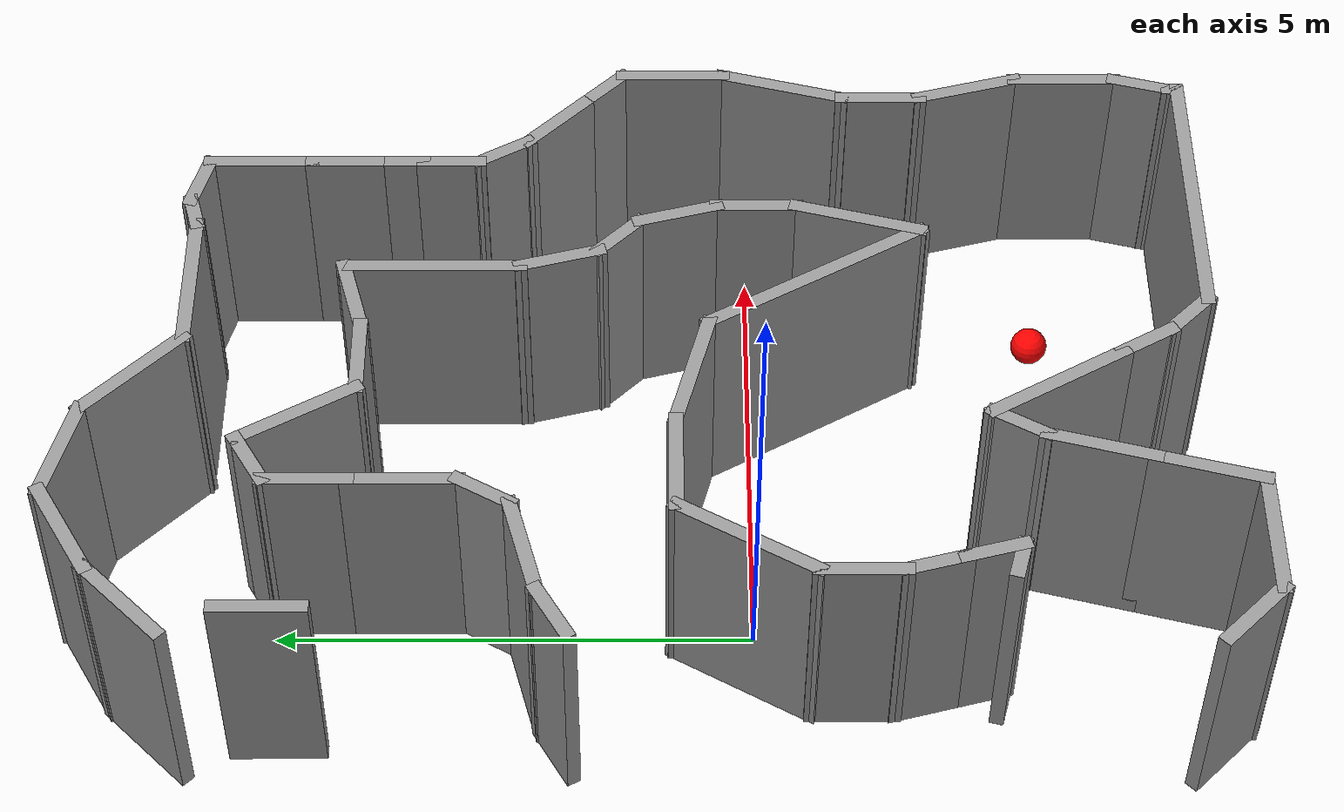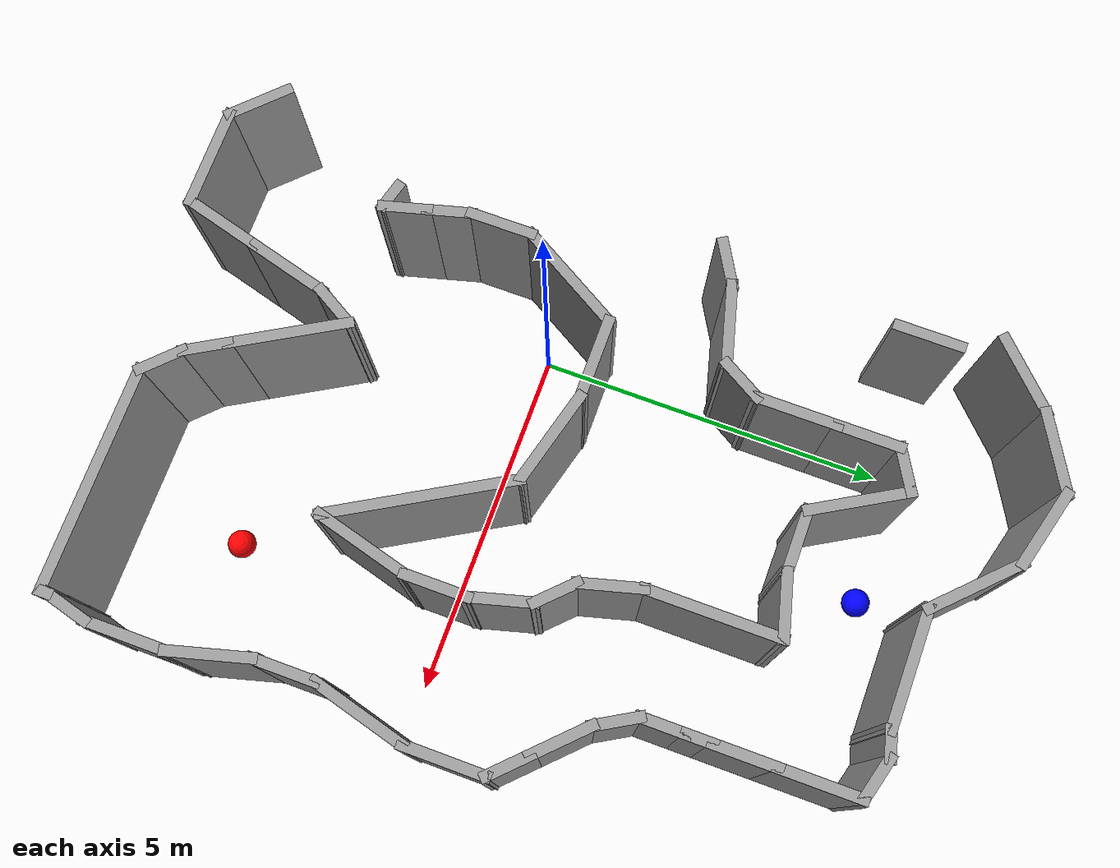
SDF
<sdf version="1.7">
 <model name="patrol_environment">
  <static>true</static>
  <pose>-2.57827 0.945924 0 0 -0 0</pose>
  <link name="Wall_100">
   <collision name="Wall_100_Collision">
    <geometry><box><size>1.25 0.15 2.5</size></box></geometry>
    <pose>0 0 1.25 0 -0 0</pose>
   </collision>
   <visual name="Wall_100_Visual">
    <pose>0 0 1.25 0 -0 0</pose>
    <geometry><box><size>1.25 0.15 2.5</size></box></geometry>
    <material>
     <script><uri>file://media/materials/scripts/gazebo.material</uri><name>Gazebo/Grey</name></script>
     <ambient>1 1 1 1</ambient>
    </material>
    <meta><layer>0</layer></meta>
   </visual>
   <pose>2.97533 -0.124161 0 0 -0 3.14159</pose>
  </link>
  <link name="Wall_101">
   <collision name="Wall_101_Collision">
    <geometry><box><size>1.75 0.15 2.5</size></box></geometry>
    <pose>0 0 1.25 0 -0 0</pose>
   </collision>
   <visual name="Wall_101_Visual">
    <pose>0 0 1.25 0 -0 0</pose>
    <geometry><box><size>1.75 0.15 2.5</size></box></geometry>
    <material>
     <script><uri>file://media/materials/scripts/gazebo.material</uri><name>Gazebo/Grey</name></script>
     <ambient>1 1 1 1</ambient>
    </material>
    <meta><layer>0</layer></meta>
   </visual>
   <pose>2.02533 -0.816981 0 0 -0 -2.0944</pose>
  </link>
  <link name="Wall_102">
   <collision name="Wall_102_Collision">
    <geometry><box><size>1 0.15 2.5</size></box></geometry>
    <pose>0 0 1.25 0 -0 0</pose>
   </collision>
   <visual name="Wall_102_Visual">
    <pose>0 0 1.25 0 -0 0</pose>
    <geometry><box><size>1 0.15 2.5</size></box></geometry>
    <material>
     <script><uri>file://media/materials/scripts/gazebo.material</uri><name>Gazebo/Grey</name></script>
     <ambient>1 1 1 1</ambient>
    </material>
    <meta><layer>0</layer></meta>
   </visual>
   <pose>1.62533 -1.9348 0 0 -0 -1.5708</pose>
  </link>
  <link name="Wall_103">
   <collision name="Wall_103_Collision">
    <geometry><box><size>0.75 0.15 2.5</size></box></geometry>
    <pose>0 0 1.25 0 -0 0</pose>
   </collision>
   <visual name="Wall_103_Visual">
    <pose>0 0 1.25 0 -0 0</pose>
    <geometry><box><size>0.75 0.15 2.5</size></box></geometry>
    <material>
     <script><uri>file://media/materials/scripts/gazebo.material</uri><name>Gazebo/Grey</name></script>
     <ambient>1 1 1 1</ambient>
    </material>
    <meta><layer>0</layer></meta>
   </visual>
   <pose>1.70298 -2.64958 0 0 -0 -1.309</pose>
  </link>
  <link name="Wall_106">
   <collision name="Wall_106_Collision">
    <geometry><box><size>0.75 0.15 2.5</size></box></geometry>
    <pose>0 0 1.25 0 -0 0</pose>
   </collision>
   <visual name="Wall_106_Visual">
    <pose>0 0 1.25 0 -0 0</pose>
    <geometry><box><size>0.75 0.15 2.5</size></box></geometry>
    <material>
     <script><uri>file://media/materials/scripts/gazebo.material</uri><name>Gazebo/Grey</name></script>
     <ambient>1 1 1 1</ambient>
    </material>
    <meta><layer>0</layer></meta>
   </visual>
   <pose>1.85827 -3.22913 0 0 -0 -1.309</pose>
  </link>
  <link name="Wall_107">
   <collision name="Wall_107_Collision">
    <geometry><box><size>0.5 0.15 2.5</size></box></geometry>
    <pose>0 0 1.25 0 -0 0</pose>
   </collision>
   <visual name="Wall_107_Visual">
    <pose>0 0 1.25 0 -0 0</pose>
    <geometry><box><size>0.5 0.15 2.5</size></box></geometry>
    <material>
     <script><uri>file://media/materials/scripts/gazebo.material</uri><name>Gazebo/Grey</name></script>
     <ambient>1 1 1 1</ambient>
    </material>
    <meta><layer>0</layer></meta>
   </visual>
   <pose>1.76688 -3.47362 0 0 -0 2.87979</pose>
  </link>
  <link name="Wall_14">
   <collision name="Wall_14_Collision">
    <geometry><box><size>1 0.15 2.5</size></box></geometry>
    <pose>0 0 1.25 0 -0 0</pose>
   </collision>
   <visual name="Wall_14_Visual">
    <pose>0 0 1.25 0 -0 0</pose>
    <geometry><box><size>1 0.15 2.5</size></box></geometry>
    <material>
     <script><uri>file://media/materials/scripts/gazebo.material</uri><name>Gazebo/Grey</name></script>
     <ambient>1 1 1 1</ambient>
    </material>
    <meta><layer>0</layer></meta>
   </visual>
   <pose>1.10289 -5.67703 0 0 -0 -0.785398</pose>
  </link>
  <link name="Wall_15">
   <collision name="Wall_15_Collision">
    <geometry><box><size>1.5 0.15 2.5</size></box></geometry>
    <pose>0 0 1.25 0 -0 0</pose>
   </collision>
   <visual name="Wall_15_Visual">
    <pose>0 0 1.25 0 -0 0</pose>
    <geometry><box><size>1.5 0.15 2.5</size></box></geometry>
    <material>
     <script><uri>file://media/materials/scripts/gazebo.material</uri><name>Gazebo/Grey</name></script>
     <ambient>1 1 1 1</ambient>
    </material>
    <meta><layer>0</layer></meta>
   </visual>
   <pose>2.07841 -5.97755 0 0 -0 0</pose>
  </link>
  <link name="Wall_16">
   <collision name="Wall_16_Collision">
    <geometry><box><size>1.25 0.15 2.5</size></box></geometry>
    <pose>0 0 1.25 0 -0 0</pose>
   </collision>
   <visual name="Wall_16_Visual">
    <pose>0 0 1.25 0 -0 0</pose>
    <geometry><box><size>1.25 0.15 2.5</size></box></geometry>
    <material>
     <script><uri>file://media/materials/scripts/gazebo.material</uri><name>Gazebo/Grey</name></script>
     <ambient>1 1 1 1</ambient>
    </material>
    <meta><layer>0</layer></meta>
   </visual>
   <pose>2.89576 -5.44629 0 0 -0 1.309</pose>
  </link>
  <link name="Wall_17">
   <collision name="Wall_17_Collision">
    <geometry><box><size>1.25 0.15 2.5</size></box></geometry>
    <pose>0 0 1.25 0 -0 0</pose>
   </collision>
   <visual name="Wall_17_Visual">
    <pose>0 0 1.25 0 -0 0</pose>
    <geometry><box><size>1.25 0.15 2.5</size></box></geometry>
    <material>
     <script><uri>file://media/materials/scripts/gazebo.material</uri><name>Gazebo/Grey</name></script>
     <ambient>1 1 1 1</ambient>
    </material>
    <meta><layer>0</layer></meta>
   </visual>
   <pose>3.18046 -4.38377 0 0 -0 1.309</pose>
  </link>
  <link name="Wall_18">
   <collision name="Wall_18_Collision">
    <geometry><box><size>0.75 0.15 2.5</size></box></geometry>
    <pose>0 0 1.25 0 -0 0</pose>
   </collision>
   <visual name="Wall_18_Visual">
    <pose>0 0 1.25 0 -0 0</pose>
    <geometry><box><size>0.75 0.15 2.5</size></box></geometry>
    <material>
     <script><uri>file://media/materials/scripts/gazebo.material</uri><name>Gazebo/Grey</name></script>
     <ambient>1 1 1 1</ambient>
    </material>
    <meta><layer>0</layer></meta>
   </visual>
   <pose>3.47281 -3.59271 0 0 -0 1.0472</pose>
  </link>
  <link name="Wall_19">
   <collision name="Wall_19_Collision">
    <geometry><box><size>1.75 0.15 2.5</size></box></geometry>
    <pose>0 0 1.25 0 -0 0</pose>
   </collision>
   <visual name="Wall_19_Visual">
    <pose>0 0 1.25 0 -0 0</pose>
    <geometry><box><size>1.75 0.15 2.5</size></box></geometry>
    <material>
     <script><uri>file://media/materials/scripts/gazebo.material</uri><name>Gazebo/Grey</name></script>
     <ambient>1 1 1 1</ambient>
    </material>
    <meta><layer>0</layer></meta>
   </visual>
   <pose>4.02281 -4.02572 0 0 -0 -1.0472</pose>
  </link>
  <link name="Wall_20">
   <collision name="Wall_20_Collision">
    <geometry><box><size>0.75 0.15 2.5</size></box></geometry>
    <pose>0 0 1.25 0 -0 0</pose>
   </collision>
   <visual name="Wall_20_Visual">
    <pose>0 0 1.25 0 -0 0</pose>
    <geometry><box><size>0.75 0.15 2.5</size></box></geometry>
    <material>
     <script><uri>file://media/materials/scripts/gazebo.material</uri><name>Gazebo/Grey</name></script>
     <ambient>1 1 1 1</ambient>
    </material>
    <meta><layer>0</layer></meta>
   </visual>
   <pose>4.57281 -4.97835 0 0 -0 -1.0472</pose>
  </link>
  <link name="Wall_21">
   <collision name="Wall_21_Collision">
    <geometry><box><size>0.75 0.15 2.5</size></box></geometry>
    <pose>0 0 1.25 0 -0 0</pose>
   </collision>
   <visual name="Wall_21_Visual">
    <pose>0 0 1.25 0 -0 0</pose>
    <geometry><box><size>0.75 0.15 2.5</size></box></geometry>
    <material>
     <script><uri>file://media/materials/scripts/gazebo.material</uri><name>Gazebo/Grey</name></script>
     <ambient>1 1 1 1</ambient>
    </material>
    <meta><layer>0</layer></meta>
   </visual>
   <pose>4.93494 -5.45029 0 0 -0 -0.785398</pose>
  </link>
  <link name="Wall_22">
   <collision name="Wall_22_Collision">
    <geometry><box><size>3.25 0.15 2.5</size></box></geometry>
    <pose>0 0 1.25 0 -0 0</pose>
   </collision>
   <visual name="Wall_22_Visual">
    <pose>0 0 1.25 0 -0 0</pose>
    <geometry><box><size>3.25 0.15 2.5</size></box></geometry>
    <material>
     <script><uri>file://media/materials/scripts/gazebo.material</uri><name>Gazebo/Grey</name></script>
     <ambient>1 1 1 1</ambient>
    </material>
    <meta><layer>0</layer></meta>
   </visual>
   <pose>6.69707 -5.66242 0 0 -0 0</pose>
  </link>
  <link name="Wall_23">
   <collision name="Wall_23_Collision">
    <geometry><box><size>0.25 0.15 2.5</size></box></geometry>
    <pose>0 0 1.25 0 -0 0</pose>
   </collision>
   <visual name="Wall_23_Visual">
    <pose>0 0 1.25 0 -0 0</pose>
    <geometry><box><size>0.25 0.15 2.5</size></box></geometry>
    <material>
     <script><uri>file://media/materials/scripts/gazebo.material</uri><name>Gazebo/Grey</name></script>
     <ambient>1 1 1 1</ambient>
    </material>
    <meta><layer>0</layer></meta>
   </visual>
   <pose>8.24707 -5.61242 0 0 -0 1.5708</pose>
  </link>
  <link name="Wall_24">
   <collision name="Wall_24_Collision">
    <geometry><box><size>0.75 0.15 2.5</size></box></geometry>
    <pose>0 0 1.25 0 -0 0</pose>
   </collision>
   <visual name="Wall_24_Visual">
    <pose>0 0 1.25 0 -0 0</pose>
    <geometry><box><size>0.75 0.15 2.5</size></box></geometry>
    <material>
     <script><uri>file://media/materials/scripts/gazebo.material</uri><name>Gazebo/Grey</name></script>
     <ambient>1 1 1 1</ambient>
    </material>
    <meta><layer>0</layer></meta>
   </visual>
   <pose>8.32472 -5.27264 0 0 -0 1.309</pose>
  </link>
  <link name="Wall_25">
   <collision name="Wall_25_Collision">
    <geometry><box><size>1.25 0.15 2.5</size></box></geometry>
    <pose>0 0 1.25 0 -0 0</pose>
   </collision>
   <visual name="Wall_25_Visual">
    <pose>0 0 1.25 0 -0 0</pose>
    <geometry><box><size>1.25 0.15 2.5</size></box></geometry>
    <material>
     <script><uri>file://media/materials/scripts/gazebo.material</uri><name>Gazebo/Grey</name></script>
     <ambient>1 1 1 1</ambient>
    </material>
    <meta><layer>0</layer></meta>
   </visual>
   <pose>8.40236 -4.43286 0 0 -0 1.5708</pose>
  </link>
  <link name="Wall_26">
   <collision name="Wall_26_Collision">
    <geometry><box><size>1.25 0.15 2.5</size></box></geometry>
    <pose>0 0 1.25 0 -0 0</pose>
   </collision>
   <visual name="Wall_26_Visual">
    <pose>0 0 1.25 0 -0 0</pose>
    <geometry><box><size>1.25 0.15 2.5</size></box></geometry>
    <material>
     <script><uri>file://media/materials/scripts/gazebo.material</uri><name>Gazebo/Grey</name></script>
     <ambient>1 1 1 1</ambient>
    </material>
    <meta><layer>0</layer></meta>
   </visual>
   <pose>8.26001 -3.35161 0 0 -0 1.8326</pose>
  </link>
  <link name="Wall_27">
   <collision name="Wall_27_Collision">
    <geometry><box><size>1 0.15 2.5</size></box></geometry>
    <pose>0 0 1.25 0 -0 0</pose>
   </collision>
   <visual name="Wall_27_Visual">
    <pose>0 0 1.25 0 -0 0</pose>
    <geometry><box><size>1 0.15 2.5</size></box></geometry>
    <material>
     <script><uri>file://media/materials/scripts/gazebo.material</uri><name>Gazebo/Grey</name></script>
     <ambient>1 1 1 1</ambient>
    </material>
    <meta><layer>0</layer></meta>
   </visual>
   <pose>8.11766 -2.39535 0 0 -0 1.5708</pose>
  </link>
  <link name="Wall_28">
   <collision name="Wall_28_Collision">
    <geometry><box><size>1.5 0.15 2.5</size></box></geometry>
    <pose>0 0 1.25 0 -0 0</pose>
   </collision>
   <visual name="Wall_28_Visual">
    <pose>0 0 1.25 0 -0 0</pose>
    <geometry><box><size>1.5 0.15 2.5</size></box></geometry>
    <material>
     <script><uri>file://media/materials/scripts/gazebo.material</uri><name>Gazebo/Grey</name></script>
     <ambient>1 1 1 1</ambient>
    </material>
    <meta><layer>0</layer></meta>
   </visual>
   <pose>8.29237 -1.31835 0 0 -0 1.309</pose>
  </link>
  <link name="Wall_29">
   <collision name="Wall_29_Collision">
    <geometry><box><size>1.25 0.15 2.5</size></box></geometry>
    <pose>0 0 1.25 0 -0 0</pose>
   </collision>
   <visual name="Wall_29_Visual">
    <pose>0 0 1.25 0 -0 0</pose>
    <geometry><box><size>1.25 0.15 2.5</size></box></geometry>
    <material>
     <script><uri>file://media/materials/scripts/gazebo.material</uri><name>Gazebo/Grey</name></script>
     <ambient>1 1 1 1</ambient>
    </material>
    <meta><layer>0</layer></meta>
   </visual>
   <pose>8.46707 -0.116346 0 0 -0 1.5708</pose>
  </link>
  <link name="Wall_30">
   <collision name="Wall_30_Collision">
    <geometry><box><size>0.75 0.15 2.5</size></box></geometry>
    <pose>0 0 1.25 0 -0 0</pose>
   </collision>
   <visual name="Wall_30_Visual">
    <pose>0 0 1.25 0 -0 0</pose>
    <geometry><box><size>0.75 0.15 2.5</size></box></geometry>
    <material>
     <script><uri>file://media/materials/scripts/gazebo.material</uri><name>Gazebo/Grey</name></script>
     <ambient>1 1 1 1</ambient>
    </material>
    <meta><layer>0</layer></meta>
   </visual>
   <pose>8.25494 0.645786 0 0 -0 2.35619</pose>
  </link>
  <link name="Wall_31">
   <collision name="Wall_31_Collision">
    <geometry><box><size>1 0.15 2.5</size></box></geometry>
    <pose>0 0 1.25 0 -0 0</pose>
   </collision>
   <visual name="Wall_31_Visual">
    <pose>0 0 1.25 0 -0 0</pose>
    <geometry><box><size>1 0.15 2.5</size></box></geometry>
    <material>
     <script><uri>file://media/materials/scripts/gazebo.material</uri><name>Gazebo/Grey</name></script>
     <ambient>1 1 1 1</ambient>
    </material>
    <meta><layer>0</layer></meta>
   </visual>
   <pose>7.74228 1.15844 0 0 -0 2.35619</pose>
  </link>
  <link name="Wall_32">
   <collision name="Wall_32_Collision">
    <geometry><box><size>0.75 0.15 2.5</size></box></geometry>
    <pose>0 0 1.25 0 -0 0</pose>
   </collision>
   <visual name="Wall_32_Visual">
    <pose>0 0 1.25 0 -0 0</pose>
    <geometry><box><size>0.75 0.15 2.5</size></box></geometry>
    <material>
     <script><uri>file://media/materials/scripts/gazebo.material</uri><name>Gazebo/Grey</name></script>
     <ambient>1 1 1 1</ambient>
    </material>
    <meta><layer>0</layer></meta>
   </visual>
   <pose>7.29176 1.71877 0 0 -0 2.0944</pose>
  </link>
  <link name="Wall_33">
   <collision name="Wall_33_Collision">
    <geometry><box><size>0.75 0.15 2.5</size></box></geometry>
    <pose>0 0 1.25 0 -0 0</pose>
   </collision>
   <visual name="Wall_33_Visual">
    <pose>0 0 1.25 0 -0 0</pose>
    <geometry><box><size>0.75 0.15 2.5</size></box></geometry>
    <material>
     <script><uri>file://media/materials/scripts/gazebo.material</uri><name>Gazebo/Grey</name></script>
     <ambient>1 1 1 1</ambient>
    </material>
    <meta><layer>0</layer></meta>
   </visual>
   <pose>7.14176 2.27857 0 0 -0 1.5708</pose>
  </link>
  <link name="Wall_34">
   <collision name="Wall_34_Collision">
    <geometry><box><size>0.5 0.15 2.5</size></box></geometry>
    <pose>0 0 1.25 0 -0 0</pose>
   </collision>
   <visual name="Wall_34_Visual">
    <pose>0 0 1.25 0 -0 0</pose>
    <geometry><box><size>0.5 0.15 2.5</size></box></geometry>
    <material>
     <script><uri>file://media/materials/scripts/gazebo.material</uri><name>Gazebo/Grey</name></script>
     <ambient>1 1 1 1</ambient>
    </material>
    <meta><layer>0</layer></meta>
   </visual>
   <pose>7.14176 2.75357 0 0 -0 1.5708</pose>
  </link>
  <link name="Wall_35">
   <collision name="Wall_35_Collision">
    <geometry><box><size>1 0.15 2.5</size></box></geometry>
    <pose>0 0 1.25 0 -0 0</pose>
   </collision>
   <visual name="Wall_35_Visual">
    <pose>0 0 1.25 0 -0 0</pose>
    <geometry><box><size>1 0.15 2.5</size></box></geometry>
    <material>
     <script><uri>file://media/materials/scripts/gazebo.material</uri><name>Gazebo/Grey</name></script>
     <ambient>1 1 1 1</ambient>
    </material>
    <meta><layer>0</layer></meta>
   </visual>
   <pose>7.14176 3.35357 0 0 -0 1.5708</pose>
  </link>
  <link name="Wall_36">
   <collision name="Wall_36_Collision">
    <geometry><box><size>1.25 0.15 2.5</size></box></geometry>
    <pose>0 0 1.25 0 -0 0</pose>
   </collision>
   <visual name="Wall_36_Visual">
    <pose>0 0 1.25 0 -0 0</pose>
    <geometry><box><size>1.25 0.15 2.5</size></box></geometry>
    <material>
     <script><uri>file://media/materials/scripts/gazebo.material</uri><name>Gazebo/Grey</name></script>
     <ambient>1 1 1 1</ambient>
    </material>
    <meta><layer>0</layer></meta>
   </visual>
   <pose>7.14176 4.32857 0 0 -0 1.5708</pose>
  </link>
  <link name="Wall_37">
   <collision name="Wall_37_Collision">
    <geometry><box><size>0.75 0.15 2.5</size></box></geometry>
    <pose>0 0 1.25 0 -0 0</pose>
   </collision>
   <visual name="Wall_37_Visual">
    <pose>0 0 1.25 0 -0 0</pose>
    <geometry><box><size>0.75 0.15 2.5</size></box></geometry>
    <material>
     <script><uri>file://media/materials/scripts/gazebo.material</uri><name>Gazebo/Grey</name></script>
     <ambient>1 1 1 1</ambient>
    </material>
    <meta><layer>0</layer></meta>
   </visual>
   <pose>6.85199 4.95622 0 0 -0 2.87979</pose>
  </link>
  <link name="Wall_38">
   <collision name="Wall_38_Collision">
    <geometry><box><size>0.5 0.15 2.5</size></box></geometry>
    <pose>0 0 1.25 0 -0 0</pose>
   </collision>
   <visual name="Wall_38_Visual">
    <pose>0 0 1.25 0 -0 0</pose>
    <geometry><box><size>0.5 0.15 2.5</size></box></geometry>
    <material>
     <script><uri>file://media/materials/scripts/gazebo.material</uri><name>Gazebo/Grey</name></script>
     <ambient>1 1 1 1</ambient>
    </material>
    <meta><layer>0</layer></meta>
   </visual>
   <pose>6.39317 4.98857 0 0 -0 -2.87979</pose>
  </link>
  <link name="Wall_40">
   <collision name="Wall_40_Collision">
    <geometry><box><size>1.75 0.15 2.5</size></box></geometry>
    <pose>0 0 1.25 0 -0 0</pose>
   </collision>
   <visual name="Wall_40_Visual">
    <pose>0 0 1.25 0 -0 0</pose>
    <geometry><box><size>1.75 0.15 2.5</size></box></geometry>
    <material>
     <script><uri>file://media/materials/scripts/gazebo.material</uri><name>Gazebo/Grey</name></script>
     <ambient>1 1 1 1</ambient>
    </material>
    <meta><layer>0</layer></meta>
   </visual>
   <pose>5.42413 4.94328 0 0 -0 3.14159</pose>
  </link>
  <link name="Wall_41">
   <collision name="Wall_41_Collision">
    <geometry><box><size>1.5 0.15 2.5</size></box></geometry>
    <pose>0 0 1.25 0 -0 0</pose>
   </collision>
   <visual name="Wall_41_Visual">
    <pose>0 0 1.25 0 -0 0</pose>
    <geometry><box><size>1.5 0.15 2.5</size></box></geometry>
    <material>
     <script><uri>file://media/materials/scripts/gazebo.material</uri><name>Gazebo/Grey</name></script>
     <ambient>1 1 1 1</ambient>
    </material>
    <meta><layer>0</layer></meta>
   </visual>
   <pose>4.14684 5.42058 0 0 -0 2.35619</pose>
  </link>
  <link name="Wall_42">
   <collision name="Wall_42_Collision">
    <geometry><box><size>1.25 0.15 2.5</size></box></geometry>
    <pose>0 0 1.25 0 -0 0</pose>
   </collision>
   <visual name="Wall_42_Visual">
    <pose>0 0 1.25 0 -0 0</pose>
    <geometry><box><size>1.25 0.15 2.5</size></box></geometry>
    <material>
     <script><uri>file://media/materials/scripts/gazebo.material</uri><name>Gazebo/Grey</name></script>
     <ambient>1 1 1 1</ambient>
    </material>
    <meta><layer>0</layer></meta>
   </visual>
   <pose>3.13828 6.04022 0 0 -0 2.87979</pose>
  </link>
  <link name="Wall_43">
   <collision name="Wall_43_Collision">
    <geometry><box><size>1.25 0.15 2.5</size></box></geometry>
    <pose>0 0 1.25 0 -0 0</pose>
   </collision>
   <visual name="Wall_43_Visual">
    <pose>0 0 1.25 0 -0 0</pose>
    <geometry><box><size>1.25 0.15 2.5</size></box></geometry>
    <material>
     <script><uri>file://media/materials/scripts/gazebo.material</uri><name>Gazebo/Grey</name></script>
     <ambient>1 1 1 1</ambient>
    </material>
    <meta><layer>0</layer></meta>
   </visual>
   <pose>2.13071 5.90757 0 0 -0 -2.61799</pose>
  </link>
  <link name="Wall_44">
   <collision name="Wall_44_Collision">
    <geometry><box><size>1.25 0.15 2.5</size></box></geometry>
    <pose>0 0 1.25 0 -0 0</pose>
   </collision>
   <visual name="Wall_44_Visual">
    <pose>0 0 1.25 0 -0 0</pose>
    <geometry><box><size>1.25 0.15 2.5</size></box></geometry>
    <material>
     <script><uri>file://media/materials/scripts/gazebo.material</uri><name>Gazebo/Grey</name></script>
     <ambient>1 1 1 1</ambient>
    </material>
    <meta><layer>0</layer></meta>
   </visual>
   <pose>1.26548 5.24367 0 0 -0 -2.35619</pose>
  </link>
  <link name="Wall_46">
   <collision name="Wall_46_Collision">
    <geometry><box><size>1 0.15 2.5</size></box></geometry>
    <pose>0 0 1.25 0 -0 0</pose>
   </collision>
   <visual name="Wall_46_Visual">
    <pose>0 0 1.25 0 -0 0</pose>
    <geometry><box><size>1 0.15 2.5</size></box></geometry>
    <material>
     <script><uri>file://media/materials/scripts/gazebo.material</uri><name>Gazebo/Grey</name></script>
     <ambient>1 1 1 1</ambient>
    </material>
    <meta><layer>0</layer></meta>
   </visual>
   <pose>1.17658 3.91014 0 0 -0 -1.5708</pose>
  </link>
  <link name="Wall_82">
   <collision name="Wall_82_Collision">
    <geometry><box><size>0.75 0.15 2.5</size></box></geometry>
    <pose>0 0 1.25 0 -0 0</pose>
   </collision>
   <visual name="Wall_82_Visual">
    <pose>0 0 1.25 0 -0 0</pose>
    <geometry><box><size>0.75 0.15 2.5</size></box></geometry>
    <material>
     <script><uri>file://media/materials/scripts/gazebo.material</uri><name>Gazebo/Grey</name></script>
     <ambient>1 1 1 1</ambient>
    </material>
    <meta><layer>0</layer></meta>
   </visual>
   <pose>1.1265 1.08993 0 0 -0 0.523599</pose>
  </link>
  <link name="Wall_83">
   <collision name="Wall_83_Collision">
    <geometry><box><size>1.25 0.15 2.5</size></box></geometry>
    <pose>0 0 1.25 0 -0 0</pose>
   </collision>
   <visual name="Wall_83_Visual">
    <pose>0 0 1.25 0 -0 0</pose>
    <geometry><box><size>1.25 0.15 2.5</size></box></geometry>
    <material>
     <script><uri>file://media/materials/scripts/gazebo.material</uri><name>Gazebo/Grey</name></script>
     <ambient>1 1 1 1</ambient>
    </material>
    <meta><layer>0</layer></meta>
   </visual>
   <pose>1.91757 1.38228 0 0 -0 0.261799</pose>
  </link>
  <link name="Wall_84">
   <collision name="Wall_84_Collision">
    <geometry><box><size>0.75 0.15 2.5</size></box></geometry>
    <pose>0 0 1.25 0 -0 0</pose>
   </collision>
   <visual name="Wall_84_Visual">
    <pose>0 0 1.25 0 -0 0</pose>
    <geometry><box><size>0.75 0.15 2.5</size></box></geometry>
    <material>
     <script><uri>file://media/materials/scripts/gazebo.material</uri><name>Gazebo/Grey</name></script>
     <ambient>1 1 1 1</ambient>
    </material>
    <meta><layer>0</layer></meta>
   </visual>
   <pose>2.59883 1.78444 0 0 -0 1.0472</pose>
  </link>
  <link name="Wall_85">
   <collision name="Wall_85_Collision">
    <geometry><box><size>1.25 0.15 2.5</size></box></geometry>
    <pose>0 0 1.25 0 -0 0</pose>
   </collision>
   <visual name="Wall_85_Visual">
    <pose>0 0 1.25 0 -0 0</pose>
    <geometry><box><size>1.25 0.15 2.5</size></box></geometry>
    <material>
     <script><uri>file://media/materials/scripts/gazebo.material</uri><name>Gazebo/Grey</name></script>
     <ambient>1 1 1 1</ambient>
    </material>
    <meta><layer>0</layer></meta>
   </visual>
   <pose>2.74883 2.59424 0 0 -0 1.5708</pose>
  </link>
  <link name="Wall_86">
   <collision name="Wall_86_Collision">
    <geometry><box><size>1 0.15 2.5</size></box></geometry>
    <pose>0 0 1.25 0 -0 0</pose>
   </collision>
   <visual name="Wall_86_Visual">
    <pose>0 0 1.25 0 -0 0</pose>
    <geometry><box><size>1 0.15 2.5</size></box></geometry>
    <material>
     <script><uri>file://media/materials/scripts/gazebo.material</uri><name>Gazebo/Grey</name></script>
     <ambient>1 1 1 1</ambient>
    </material>
    <meta><layer>0</layer></meta>
   </visual>
   <pose>2.74883 3.56924 0 0 -0 1.5708</pose>
  </link>
  <link name="Wall_87">
   <collision name="Wall_87_Collision">
    <geometry><box><size>0.75 0.15 2.5</size></box></geometry>
    <pose>0 0 1.25 0 -0 0</pose>
   </collision>
   <visual name="Wall_87_Visual">
    <pose>0 0 1.25 0 -0 0</pose>
    <geometry><box><size>0.75 0.15 2.5</size></box></geometry>
    <material>
     <script><uri>file://media/materials/scripts/gazebo.material</uri><name>Gazebo/Grey</name></script>
     <ambient>1 1 1 1</ambient>
    </material>
    <meta><layer>0</layer></meta>
   </visual>
   <pose>3.00863 4.14424 0 0 -0 0.523599</pose>
  </link>
  <link name="Wall_88">
   <collision name="Wall_88_Collision">
    <geometry><box><size>1.5 0.15 2.5</size></box></geometry>
    <pose>0 0 1.25 0 -0 0</pose>
   </collision>
   <visual name="Wall_88_Visual">
    <pose>0 0 1.25 0 -0 0</pose>
    <geometry><box><size>1.5 0.15 2.5</size></box></geometry>
    <material>
     <script><uri>file://media/materials/scripts/gazebo.material</uri><name>Gazebo/Grey</name></script>
     <ambient>1 1 1 1</ambient>
    </material>
    <meta><layer>0</layer></meta>
   </visual>
   <pose>3.60594 3.70968 0 0 -0 -1.0472</pose>
  </link>
  <link name="Wall_89">
   <collision name="Wall_89_Collision">
    <geometry><box><size>1 0.15 2.5</size></box></geometry>
    <pose>0 0 1.25 0 -0 0</pose>
   </collision>
   <visual name="Wall_89_Visual">
    <pose>0 0 1.25 0 -0 0</pose>
    <geometry><box><size>1 0.15 2.5</size></box></geometry>
    <material>
     <script><uri>file://media/materials/scripts/gazebo.material</uri><name>Gazebo/Grey</name></script>
     <ambient>1 1 1 1</ambient>
    </material>
    <meta><layer>0</layer></meta>
   </visual>
   <pose>4.36844 3.12511 0 0 -0 0</pose>
  </link>
  <link name="Wall_90">
   <collision name="Wall_90_Collision">
    <geometry><box><size>1 0.15 2.5</size></box></geometry>
    <pose>0 0 1.25 0 -0 0</pose>
   </collision>
   <visual name="Wall_90_Visual">
    <pose>0 0 1.25 0 -0 0</pose>
    <geometry><box><size>1 0.15 2.5</size></box></geometry>
    <material>
     <script><uri>file://media/materials/scripts/gazebo.material</uri><name>Gazebo/Grey</name></script>
     <ambient>1 1 1 1</ambient>
    </material>
    <meta><layer>0</layer></meta>
   </visual>
   <pose>5.20396 3.23511 0 0 -0 0.261799</pose>
  </link>
  <link name="Wall_91">
   <collision name="Wall_91_Collision">
    <geometry><box><size>2 0.15 2.5</size></box></geometry>
    <pose>0 0 1.25 0 -0 0</pose>
   </collision>
   <visual name="Wall_91_Visual">
    <pose>0 0 1.25 0 -0 0</pose>
    <geometry><box><size>2 0.15 2.5</size></box></geometry>
    <material>
     <script><uri>file://media/materials/scripts/gazebo.material</uri><name>Gazebo/Grey</name></script>
     <ambient>1 1 1 1</ambient>
    </material>
    <meta><layer>0</layer></meta>
   </visual>
   <pose>5.61448 2.4201 0 0 -0 -1.5708</pose>
  </link>
  <link name="Wall_92">
   <collision name="Wall_92_Collision">
    <geometry><box><size>1 0.15 2.5</size></box></geometry>
    <pose>0 0 1.25 0 -0 0</pose>
   </collision>
   <visual name="Wall_92_Visual">
    <pose>0 0 1.25 0 -0 0</pose>
    <geometry><box><size>1 0.15 2.5</size></box></geometry>
    <material>
     <script><uri>file://media/materials/scripts/gazebo.material</uri><name>Gazebo/Grey</name></script>
     <ambient>1 1 1 1</ambient>
    </material>
    <meta><layer>0</layer></meta>
   </visual>
   <pose>5.72448 1.08459 0 0 -0 -1.309</pose>
  </link>
  <link name="Wall_93">
   <collision name="Wall_93_Collision">
    <geometry><box><size>0.75 0.15 2.5</size></box></geometry>
    <pose>0 0 1.25 0 -0 0</pose>
   </collision>
   <visual name="Wall_93_Visual">
    <pose>0 0 1.25 0 -0 0</pose>
    <geometry><box><size>0.75 0.15 2.5</size></box></geometry>
    <material>
     <script><uri>file://media/materials/scripts/gazebo.material</uri><name>Gazebo/Grey</name></script>
     <ambient>1 1 1 1</ambient>
    </material>
    <meta><layer>0</layer></meta>
   </visual>
   <pose>6.04661 0.461936 0 0 -0 -0.785398</pose>
  </link>
  <link name="Wall_94">
   <collision name="Wall_94_Collision">
    <geometry><box><size>1 0.15 2.5</size></box></geometry>
    <pose>0 0 1.25 0 -0 0</pose>
   </collision>
   <visual name="Wall_94_Visual">
    <pose>0 0 1.25 0 -0 0</pose>
    <geometry><box><size>1 0.15 2.5</size></box></geometry>
    <material>
     <script><uri>file://media/materials/scripts/gazebo.material</uri><name>Gazebo/Grey</name></script>
     <ambient>1 1 1 1</ambient>
    </material>
    <meta><layer>0</layer></meta>
   </visual>
   <pose>6.36874 -0.160714 0 0 -0 -1.309</pose>
  </link>
  <link name="Wall_95">
   <collision name="Wall_95_Collision">
    <geometry><box><size>1 0.15 2.5</size></box></geometry>
    <pose>0 0 1.25 0 -0 0</pose>
   </collision>
   <visual name="Wall_95_Visual">
    <pose>0 0 1.25 0 -0 0</pose>
    <geometry><box><size>1 0.15 2.5</size></box></geometry>
    <material>
     <script><uri>file://media/materials/scripts/gazebo.material</uri><name>Gazebo/Grey</name></script>
     <ambient>1 1 1 1</ambient>
    </material>
    <meta><layer>0</layer></meta>
   </visual>
   <pose>6.47874 -0.996233 0 0 -0 -1.5708</pose>
  </link>
  <link name="Wall_97">
   <collision name="Wall_97_Collision">
    <geometry><box><size>1.5 0.15 2.5</size></box></geometry>
    <pose>0 0 1.25 0 -0 0</pose>
   </collision>
   <visual name="Wall_97_Visual">
    <pose>0 0 1.25 0 -0 0</pose>
    <geometry><box><size>1.5 0.15 2.5</size></box></geometry>
    <material>
     <script><uri>file://media/materials/scripts/gazebo.material</uri><name>Gazebo/Grey</name></script>
     <ambient>1 1 1 1</ambient>
    </material>
    <meta><layer>0</layer></meta>
   </visual>
   <pose>6.30403 -2.07323 0 0 -0 -1.8326</pose>
  </link>
  <link name="Wall_98">
   <collision name="Wall_98_Collision">
    <geometry><box><size>2.75 0.15 2.5</size></box></geometry>
    <pose>0 0 1.25 0 -0 0</pose>
   </collision>
   <visual name="Wall_98_Visual">
    <pose>0 0 1.25 0 -0 0</pose>
    <geometry><box><size>2.75 0.15 2.5</size></box></geometry>
    <material>
     <script><uri>file://media/materials/scripts/gazebo.material</uri><name>Gazebo/Grey</name></script>
     <ambient>1 1 1 1</ambient>
    </material>
    <meta><layer>0</layer></meta>
   </visual>
   <pose>5.47933 -1.5994 0 0 -0 2.0944</pose>
  </link>
  <link name="Wall_99">
   <collision name="Wall_99_Collision">
    <geometry><box><size>1.5 0.15 2.5</size></box></geometry>
    <pose>0 0 1.25 0 -0 0</pose>
   </collision>
   <visual name="Wall_99_Visual">
    <pose>0 0 1.25 0 -0 0</pose>
    <geometry><box><size>1.5 0.15 2.5</size></box></geometry>
    <material>
     <script><uri>file://media/materials/scripts/gazebo.material</uri><name>Gazebo/Grey</name></script>
     <ambient>1 1 1 1</ambient>
    </material>
    <meta><layer>0</layer></meta>
   </visual>
   <pose>4.17733 -0.298864 0 0 -0 2.87979</pose>
  </link>
  <model name="patrol_point_1">
   <static>true</static>
   <pose>4.402 4.340 0.1 0 0 0</pose>
   <link name="patrol_point_1_link">
    <visual name="patrol_point_1_visual">
     <geometry><sphere><radius>0.2</radius></sphere></geometry>
     <material><ambient>0 0 1 1</ambient><diffuse>0 0 1 1</diffuse><emissive>0 0 0.3 1</emissive></material>
    </visual>
   </link>
  </model>
  <model name="patrol_point_2">
   <static>true</static>
   <pose>6.586306 -4.121595 0.1 0 0 0</pose>
   <link name="patrol_point_2_link">
    <visual name="patrol_point_2_visual">
     <geometry><sphere><radius>0.2</radius></sphere></geometry>
     <material><ambient>1 0 0 1</ambient><diffuse>1 0 0 1</diffuse><emissive>0.3 0 0 1</emissive></material>
    </visual>
   </link>
  </model>
 </model>
</sdf>
